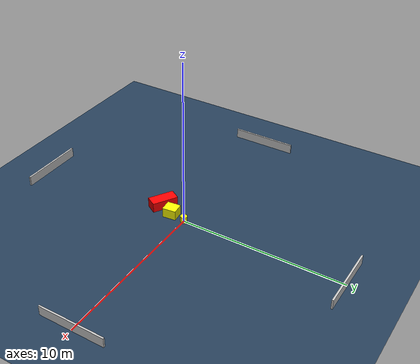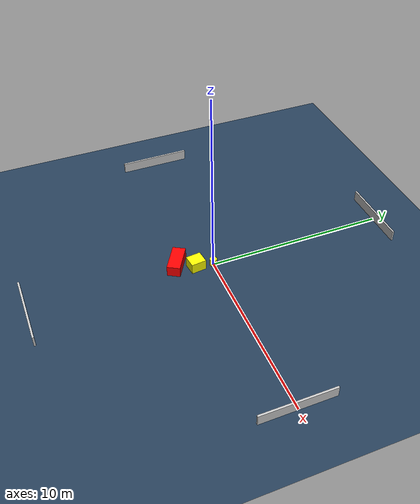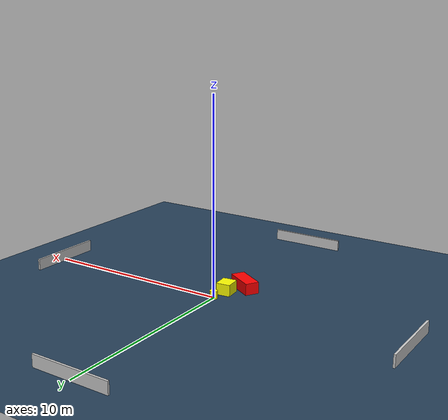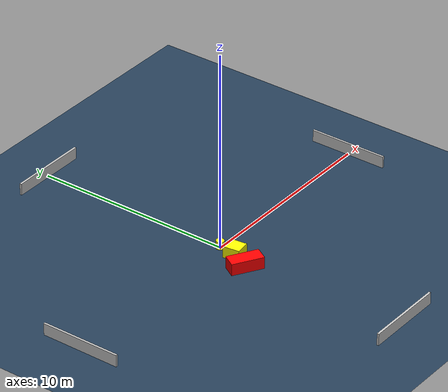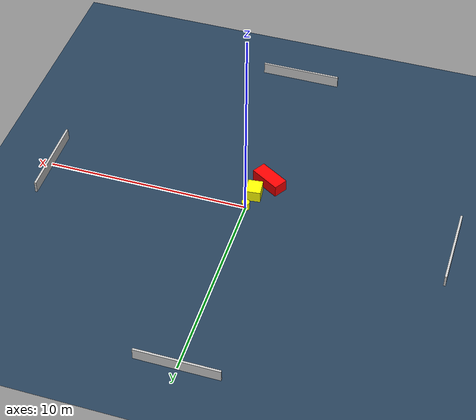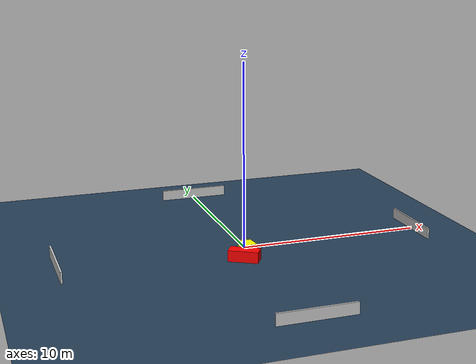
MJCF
<?xml version="1.0" ?>
<mujoco model="generated_environment">
  <option timestep="0.01" integrator="RK4" cone="elliptic"/>
  <default>
    <geom density="1"/>
  </default>
  <asset>
    <texture builtin="gradient" height="3072" name="skybox" rgb1="0.3 0.5 0.7" rgb2="0 0 0" type="skybox" width="512"/>
    <texture builtin="checker" height="300" name="groundplane" rgb1="0.2 0.3 0.4" rgb2="0.1 0.2 0.3" type="2d" width="300"/>
    <material name="groundplane" reflectance="0.2" texrepeat="5 5" texture="groundplane"/>
  </asset>
  <worldbody>
    <light dir="0 0 -1" directional="true" pos="0 0 1.5"/>
    <geom condim="3" friction="0.5 0.005 0.001" material="groundplane" name="floor" pos="0 0 0" size="0 0 0.05" type="plane"/>
    <body name="walls">
      <geom name="wall_1" condim="4" pos="-10.0 0.0 0.3" rgba="0.800000011920929 0.800000011920929 0.800000011920929 1.0" size="0.05 2.0 0.3" type="box"/>
      <geom name="wall_2" condim="4" pos="10.0 0.0 0.3" rgba="0.800000011920929 0.800000011920929 0.800000011920929 1.0" size="0.05 2.0 0.3" type="box"/>
      <geom name="wall_3" condim="4" pos="0.0 -10.0 0.3" rgba="0.800000011920929 0.800000011920929 0.800000011920929 1.0" size="2.0 0.05 0.3" type="box"/>
      <geom name="wall_4" condim="4" pos="0.0 10.0 0.3" rgba="0.800000011920929 0.800000011920929 0.800000011920929 1.0" size="2.0 0.05 0.3" type="box"/>
    </body>
    <body name="robot">
      <joint name="joint_x" type="slide" pos="0 0 0" axis="1 0 0"/>
      <joint name="joint_y" type="slide" pos="0 0 0" axis="0 1 0"/>
      <geom name="robot" type="cylinder" pos="0.0 0.0 0.2" size="0.2 0.2 0.0" mass="5.0" friction="1.0 0.005 0.0001" condim="4" rgba="1.0 1.0 0.0 1.0"/>
    </body>
    <body name="obstacle_1_movable">
      <geom name="obstacle_1_movable" condim="4" pos="-0.14737731148870276 -0.936086496905247 0.3" euler="0 0 276.3915537815499" friction="0.0 0.005 0.001" rgba="1.0 1.0 0.0 1.0" size="0.4134580280312723 0.3635546598119675 0.3" type="box" mass="0.1"/>
      <joint type="free"/>
    </body>
    <body name="obstacle_2_static">
      <geom name="obstacle_2_static" condim="4" pos="-0.6418063099496315 -1.8709552530970877 0.3" euler="0 0 149.013924300476" friction="0.0 0.005 0.001" rgba="1.0 0.0 0.0 1.0" size="0.7959783306624382 0.3574424150774207 0.3" type="box"/>
    </body>
  </worldbody>
  <actuator>
    <motor name="actuator_x" joint="joint_x" gear="1" ctrlrange="-1 1"/>
    <motor name="actuator_y" joint="joint_y" gear="1" ctrlrange="-1 1"/>
  </actuator>
</mujoco>
